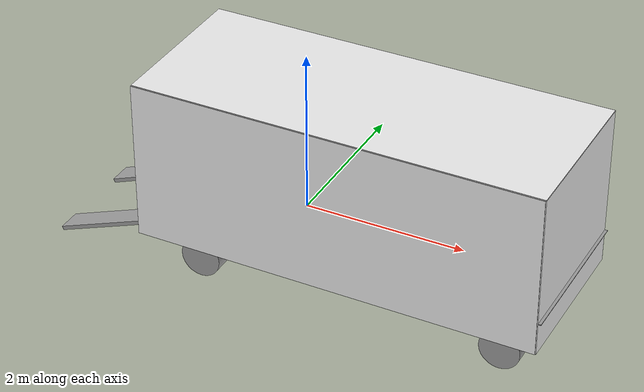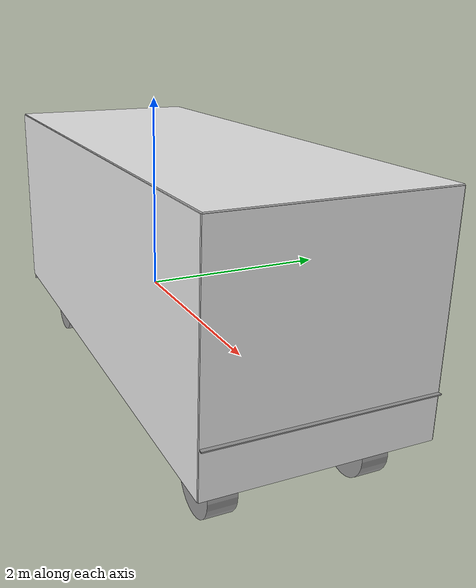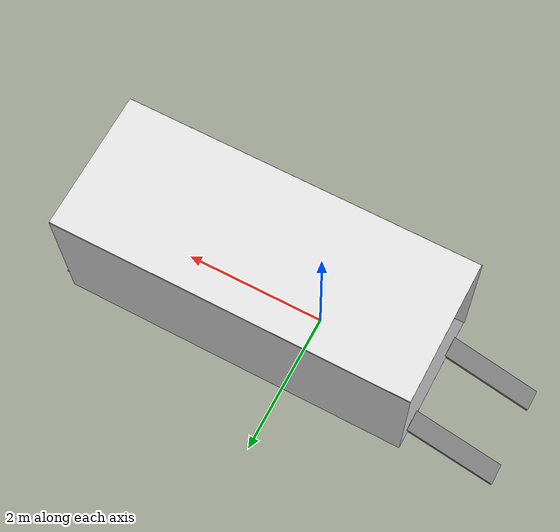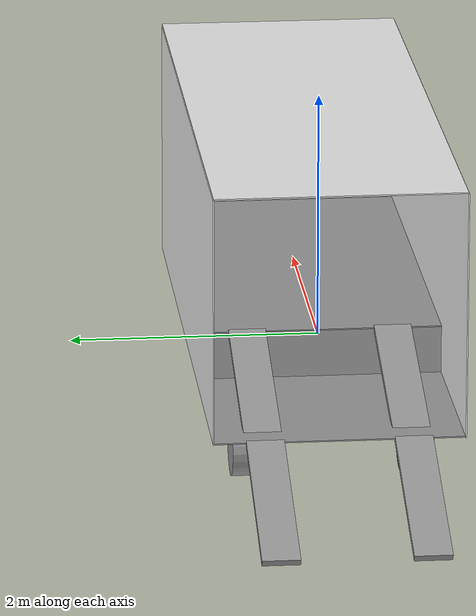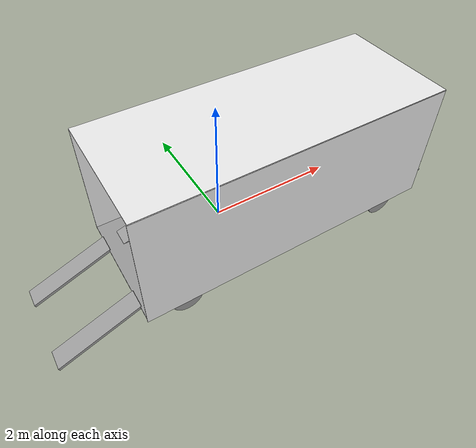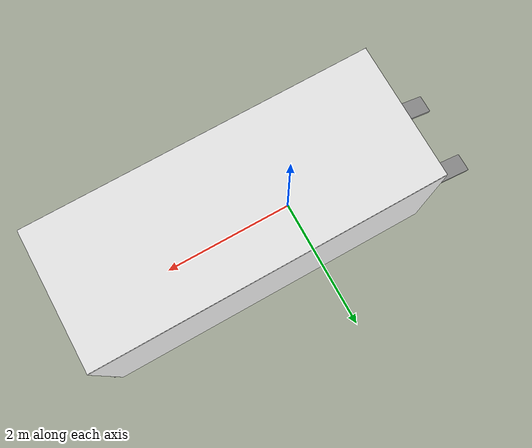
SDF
<?xml version='1.0'?>
<sdf version='1.6'>
  <model name='van'>
    <link name='link_0'>
      <inertial>
        <mass>200</mass>
        <inertia>
          <ixx>65.4077</ixx>
          <ixy>0</ixy>
          <ixz>0</ixz>
          <iyy>416.668</iyy>
          <iyz>0</iyz>
          <izz>482.073</izz>
        </inertia>
        <pose frame=''>0 0 0 0 -0 0</pose>
      </inertial>
      <pose frame=''>0.803701 0.00132 -0.310336 0 -0 0</pose>
      <gravity>1</gravity>
      <self_collide>0</self_collide>
      <kinematic>0</kinematic>
      <enable_wind>0</enable_wind>
      <visual name='visual'>
        <pose frame=''>0 0 0 0 -0 0</pose>
        <geometry>
          <box>
            <size>5 1.981 0.01</size>
          </box>
        </geometry>
        <material>
          <lighting>1</lighting>
          <script>
            <uri>file://media/materials/scripts/gazebo.material</uri>
            <name>Gazebo/Grey</name>
          </script>
          <shader type='vertex'>
            <normal_map>__default__</normal_map>
          </shader>
          <ambient>0.3 0.3 0.3 1</ambient>
          <diffuse>0.7 0.7 0.7 1</diffuse>
          <specular>0.01 0.01 0.01 1</specular>
          <emissive>0 0 0 1</emissive>
        </material>
        <transparency>0</transparency>
        <cast_shadows>1</cast_shadows>
      </visual>
      <collision name='collision'>
        <laser_retro>0</laser_retro>
        <max_contacts>10</max_contacts>
        <pose frame=''>0 0 0 0 -0 0</pose>
        <geometry>
          <box>
            <size>5 1.981 0.01</size>
          </box>
        </geometry>
        <surface>
          <friction>
            <ode>
              <mu>1</mu>
              <mu2>1</mu2>
              <fdir1>1 0 0</fdir1>
              <slip1>0</slip1>
              <slip2>0</slip2>
            </ode>
            <torsional>
              <coefficient>1</coefficient>
              <patch_radius>0</patch_radius>
              <surface_radius>0</surface_radius>
              <use_patch_radius>1</use_patch_radius>
              <ode>
                <slip>0</slip>
              </ode>
            </torsional>
          </friction>
          <bounce>
            <restitution_coefficient>0</restitution_coefficient>
            <threshold>1e+06</threshold>
          </bounce>
          <contact>
            <collide_without_contact>0</collide_without_contact>
            <collide_without_contact_bitmask>1</collide_without_contact_bitmask>
            <collide_bitmask>1</collide_bitmask>
            <ode>
              <soft_cfm>0</soft_cfm>
              <soft_erp>0.2</soft_erp>
              <kp>1e+13</kp>
              <kd>1e+13</kd>
              <max_vel>0</max_vel>
              <min_depth>0</min_depth>
            </ode>
            <bullet>
              <split_impulse>1</split_impulse>
              <split_impulse_penetration_threshold>-0.01</split_impulse_penetration_threshold>
              <soft_cfm>0</soft_cfm>
              <soft_erp>0.2</soft_erp>
              <kp>1e+13</kp>
              <kd>1e+13</kd>
            </bullet>
          </contact>
        </surface>
      </collision>
    </link>
    <link name='link_0_0'>
      <inertial>
        <mass>150</mass>
        <inertia>
          <ixx>51.0545</ixx>
          <ixy>0</ixy>
          <ixz>0</ixz>
          <iyy>2.00125</iyy>
          <iyz>0</iyz>
          <izz>49.0558</izz>
        </inertia>
        <pose frame=''>0 0 0 0 -0 0</pose>
      </inertial>
      <pose frame=''>-0.152 0.001346 -0.113301 7e-06 -0.002504 0.000226</pose>
      <gravity>1</gravity>
      <self_collide>0</self_collide>
      <kinematic>0</kinematic>
      <enable_wind>0</enable_wind>
      <visual name='visual'>
        <pose frame=''>0 0 0 0 -0 0</pose>
        <geometry>
          <box>
            <size>0.01 1.981 0.4</size>
          </box>
        </geometry>
        <material>
          <lighting>1</lighting>
          <script>
            <uri>file://media/materials/scripts/gazebo.material</uri>
            <name>Gazebo/Grey</name>
          </script>
          <shader type='vertex'>
            <normal_map>__default__</normal_map>
          </shader>
          <ambient>0.3 0.3 0.3 1</ambient>
          <diffuse>0.7 0.7 0.7 1</diffuse>
          <specular>0.01 0.01 0.01 1</specular>
          <emissive>0 0 0 1</emissive>
        </material>
        <transparency>0</transparency>
        <cast_shadows>1</cast_shadows>
      </visual>
      <collision name='collision'>
        <laser_retro>0</laser_retro>
        <max_contacts>10</max_contacts>
        <pose frame=''>0 0 0 0 -0 0</pose>
        <geometry>
          <box>
            <size>0.01 1.981 0.4</size>
          </box>
        </geometry>
        <surface>
          <friction>
            <ode>
              <mu>1</mu>
              <mu2>1</mu2>
              <fdir1>0 0 0</fdir1>
              <slip1>0</slip1>
              <slip2>0</slip2>
            </ode>
            <torsional>
              <coefficient>1</coefficient>
              <patch_radius>0</patch_radius>
              <surface_radius>0</surface_radius>
              <use_patch_radius>1</use_patch_radius>
              <ode>
                <slip>0</slip>
              </ode>
            </torsional>
          </friction>
          <bounce>
            <restitution_coefficient>0</restitution_coefficient>
            <threshold>1e+06</threshold>
          </bounce>
          <contact>
            <collide_without_contact>0</collide_without_contact>
            <collide_without_contact_bitmask>1</collide_without_contact_bitmask>
            <collide_bitmask>1</collide_bitmask>
            <ode>
              <soft_cfm>0</soft_cfm>
              <soft_erp>0.2</soft_erp>
              <kp>1e+13</kp>
              <kd>1e+13</kd>
              <max_vel>0</max_vel>
              <min_depth>0</min_depth>
            </ode>
            <bullet>
              <split_impulse>1</split_impulse>
              <split_impulse_penetration_threshold>-0.01</split_impulse_penetration_threshold>
              <soft_cfm>0</soft_cfm>
              <soft_erp>0.2</soft_erp>
              <kp>1e+13</kp>
              <kd>1e+13</kd>
            </bullet>
          </contact>
        </surface>
      </collision>
    </link>
    <link name='link_0_clone'>
      <inertial>
        <mass>1</mass>
        <inertia>
          <ixx>0.166667</ixx>
          <ixy>0</ixy>
          <ixz>0</ixz>
          <iyy>0.166667</iyy>
          <iyz>0</iyz>
          <izz>0.166667</izz>
        </inertia>
        <pose frame=''>0 0 0 0 -0 0</pose>
      </inertial>
      <pose frame=''>0.803701 0.00132 1.68966 0 -0 0</pose>
      <gravity>1</gravity>
      <self_collide>0</self_collide>
      <kinematic>0</kinematic>
      <enable_wind>0</enable_wind>
      <visual name='visual'>
        <pose frame=''>0 0 0 0 -0 0</pose>
        <geometry>
          <box>
            <size>5 1.981 0.01</size>
          </box>
        </geometry>
        <material>
          <lighting>1</lighting>
          <script>
            <uri>file://media/materials/scripts/gazebo.material</uri>
            <name>Gazebo/White</name>
          </script>
          <shader type='vertex'>
            <normal_map>__default__</normal_map>
          </shader>
          <ambient>0.3 0.3 0.3 1</ambient>
          <diffuse>0.7 0.7 0.7 1</diffuse>
          <specular>0.01 0.01 0.01 1</specular>
          <emissive>0 0 0 1</emissive>
        </material>
        <transparency>0</transparency>
        <cast_shadows>1</cast_shadows>
      </visual>
      <collision name='collision'>
        <laser_retro>0</laser_retro>
        <max_contacts>10</max_contacts>
        <pose frame=''>0 0 0 0 -0 0</pose>
        <geometry>
          <box>
            <size>5 1.981 0.01</size>
          </box>
        </geometry>
        <surface>
          <friction>
            <ode>
              <mu>1</mu>
              <mu2>1</mu2>
              <fdir1>0 0 0</fdir1>
              <slip1>0</slip1>
              <slip2>0</slip2>
            </ode>
            <torsional>
              <coefficient>1</coefficient>
              <patch_radius>0</patch_radius>
              <surface_radius>0</surface_radius>
              <use_patch_radius>1</use_patch_radius>
              <ode>
                <slip>0</slip>
              </ode>
            </torsional>
          </friction>
          <bounce>
            <restitution_coefficient>0</restitution_coefficient>
            <threshold>1e+06</threshold>
          </bounce>
          <contact>
            <collide_without_contact>0</collide_without_contact>
            <collide_without_contact_bitmask>1</collide_without_contact_bitmask>
            <collide_bitmask>1</collide_bitmask>
            <ode>
              <soft_cfm>0</soft_cfm>
              <soft_erp>0.2</soft_erp>
              <kp>1e+13</kp>
              <kd>1e+13</kd>
              <max_vel>0</max_vel>
              <min_depth>0</min_depth>
            </ode>
            <bullet>
              <split_impulse>1</split_impulse>
              <split_impulse_penetration_threshold>-0.01</split_impulse_penetration_threshold>
              <soft_cfm>0</soft_cfm>
              <soft_erp>0.2</soft_erp>
              <kp>1e+13</kp>
              <kd>1e+13</kd>
            </bullet>
          </contact>
        </surface>
      </collision>
    </link>
    <link name='link_1'>
      <inertial>
        <mass>1</mass>
        <inertia>
          <ixx>0.166667</ixx>
          <ixy>0</ixy>
          <ixz>0</ixz>
          <iyy>0.166667</iyy>
          <iyz>0</iyz>
          <izz>0.166667</izz>
        </inertia>
        <pose frame=''>0 0 0 0 -0 0</pose>
      </inertial>
      <pose frame=''>0.803701 0.80832 0.682664 0 -0 0</pose>
      <gravity>1</gravity>
      <self_collide>0</self_collide>
      <kinematic>0</kinematic>
      <enable_wind>0</enable_wind>
      <visual name='visual'>
        <pose frame=''>0 0.185 0 0 -0 0</pose>
        <geometry>
          <box>
            <size>5 0.01 2</size>
          </box>
        </geometry>
        <material>
          <lighting>1</lighting>
          <script>
            <uri>file://media/materials/scripts/gazebo.material</uri>
            <name>Gazebo/White</name>
          </script>
          <shader type='vertex'>
            <normal_map>__default__</normal_map>
          </shader>
          <ambient>0.3 0.3 0.3 1</ambient>
          <diffuse>0.7 0.7 0.7 1</diffuse>
          <specular>0.01 0.01 0.01 1</specular>
          <emissive>0 0 0 1</emissive>
        </material>
        <transparency>0</transparency>
        <cast_shadows>1</cast_shadows>
      </visual>
      <collision name='collision'>
        <laser_retro>0</laser_retro>
        <max_contacts>10</max_contacts>
        <pose frame=''>0 0.185 0 0 -0 0</pose>
        <geometry>
          <box>
            <size>5 0.01 2</size>
          </box>
        </geometry>
        <surface>
          <friction>
            <ode>
              <mu>1</mu>
              <mu2>1</mu2>
              <fdir1>0 0 0</fdir1>
              <slip1>0</slip1>
              <slip2>0</slip2>
            </ode>
            <torsional>
              <coefficient>1</coefficient>
              <patch_radius>0</patch_radius>
              <surface_radius>0</surface_radius>
              <use_patch_radius>1</use_patch_radius>
              <ode>
                <slip>0</slip>
              </ode>
            </torsional>
          </friction>
          <bounce>
            <restitution_coefficient>0</restitution_coefficient>
            <threshold>1e+06</threshold>
          </bounce>
          <contact>
            <collide_without_contact>0</collide_without_contact>
            <collide_without_contact_bitmask>1</collide_without_contact_bitmask>
            <collide_bitmask>1</collide_bitmask>
            <ode>
              <soft_cfm>0</soft_cfm>
              <soft_erp>0.2</soft_erp>
              <kp>1e+13</kp>
              <kd>1e+13</kd>
              <max_vel>0</max_vel>
              <min_depth>0</min_depth>
            </ode>
            <bullet>
              <split_impulse>1</split_impulse>
              <split_impulse_penetration_threshold>-0.01</split_impulse_penetration_threshold>
              <soft_cfm>0</soft_cfm>
              <soft_erp>0.2</soft_erp>
              <kp>1e+13</kp>
              <kd>1e+13</kd>
            </bullet>
          </contact>
        </surface>
      </collision>
    </link>
    <link name='link_1_0'>
      <inertial>
        <mass>200</mass>
        <inertia>
          <ixx>65.4077</ixx>
          <ixy>0</ixy>
          <ixz>0</ixz>
          <iyy>204.168</iyy>
          <iyz>0</iyz>
          <izz>269.573</izz>
        </inertia>
        <pose frame=''>0 0 0 0 -0 0</pose>
      </inertial>
      <pose frame=''>1.59126 0.001498 0.089757 7e-06 -0.002504 0.000226</pose>
      <gravity>1</gravity>
      <self_collide>0</self_collide>
      <kinematic>0</kinematic>
      <enable_wind>0</enable_wind>
      <visual name='visual'>
        <pose frame=''>0 0 0 0 -0 0</pose>
        <geometry>
          <box>
            <size>3.5 1.981 0.01</size>
          </box>
        </geometry>
        <material>
          <lighting>1</lighting>
          <script>
            <uri>file://media/materials/scripts/gazebo.material</uri>
            <name>Gazebo/Grey</name>
          </script>
          <shader type='vertex'>
            <normal_map>__default__</normal_map>
          </shader>
          <ambient>0.3 0.3 0.3 1</ambient>
          <diffuse>0.7 0.7 0.7 1</diffuse>
          <specular>0.01 0.01 0.01 1</specular>
          <emissive>0 0 0 1</emissive>
        </material>
        <transparency>0</transparency>
        <cast_shadows>1</cast_shadows>
      </visual>
      <collision name='collision'>
        <laser_retro>0</laser_retro>
        <max_contacts>10</max_contacts>
        <pose frame=''>0 0 0 0 -0 0</pose>
        <geometry>
          <box>
            <size>3.5 1.981 0.01</size>
          </box>
        </geometry>
        <surface>
          <friction>
            <ode>
              <mu>1</mu>
              <mu2>1</mu2>
              <fdir1>0 0 0</fdir1>
              <slip1>0</slip1>
              <slip2>0</slip2>
            </ode>
            <torsional>
              <coefficient>1</coefficient>
              <patch_radius>0</patch_radius>
              <surface_radius>0</surface_radius>
              <use_patch_radius>1</use_patch_radius>
              <ode>
                <slip>0</slip>
              </ode>
            </torsional>
          </friction>
          <bounce>
            <restitution_coefficient>0</restitution_coefficient>
            <threshold>1e+06</threshold>
          </bounce>
          <contact>
            <collide_without_contact>0</collide_without_contact>
            <collide_without_contact_bitmask>1</collide_without_contact_bitmask>
            <collide_bitmask>1</collide_bitmask>
            <ode>
              <soft_cfm>0</soft_cfm>
              <soft_erp>0.2</soft_erp>
              <kp>1e+13</kp>
              <kd>1e+13</kd>
              <max_vel>0</max_vel>
              <min_depth>0</min_depth>
            </ode>
            <bullet>
              <split_impulse>1</split_impulse>
              <split_impulse_penetration_threshold>-0.01</split_impulse_penetration_threshold>
              <soft_cfm>0</soft_cfm>
              <soft_erp>0.2</soft_erp>
              <kp>1e+13</kp>
              <kd>1e+13</kd>
            </bullet>
          </contact>
        </surface>
      </collision>
    </link>
    <link name='link_1_clone'>
      <inertial>
        <mass>1</mass>
        <inertia>
          <ixx>0.166667</ixx>
          <ixy>0</ixy>
          <ixz>0</ixz>
          <iyy>0.166667</iyy>
          <iyz>0</iyz>
          <izz>0.166667</izz>
        </inertia>
        <pose frame=''>0 0 0 0 -0 0</pose>
      </inertial>
      <pose frame=''>0.79451 -0.805933 0.682641 0 -0 0</pose>
      <gravity>1</gravity>
      <self_collide>0</self_collide>
      <kinematic>0</kinematic>
      <enable_wind>0</enable_wind>
      <visual name='visual'>
        <pose frame=''>0 -0.185 0 0 -0 0</pose>
        <geometry>
          <box>
            <size>5 0.01 2</size>
          </box>
        </geometry>
        <material>
          <lighting>1</lighting>
          <script>
            <uri>file://media/materials/scripts/gazebo.material</uri>
            <name>Gazebo/White</name>
          </script>
          <shader type='vertex'>
            <normal_map>__default__</normal_map>
          </shader>
          <ambient>0.3 0.3 0.3 1</ambient>
          <diffuse>0.7 0.7 0.7 1</diffuse>
          <specular>0.01 0.01 0.01 1</specular>
          <emissive>0 0 0 1</emissive>
        </material>
        <transparency>0</transparency>
        <cast_shadows>1</cast_shadows>
      </visual>
      <collision name='collision'>
        <laser_retro>0</laser_retro>
        <max_contacts>10</max_contacts>
        <pose frame=''>0 -0.185 0 0 -0 0</pose>
        <geometry>
          <box>
            <size>5 0.01 2</size>
          </box>
        </geometry>
        <surface>
          <friction>
            <ode>
              <mu>1</mu>
              <mu2>1</mu2>
              <fdir1>0 0 0</fdir1>
              <slip1>0</slip1>
              <slip2>0</slip2>
            </ode>
            <torsional>
              <coefficient>1</coefficient>
              <patch_radius>0</patch_radius>
              <surface_radius>0</surface_radius>
              <use_patch_radius>1</use_patch_radius>
              <ode>
                <slip>0</slip>
              </ode>
            </torsional>
          </friction>
          <bounce>
            <restitution_coefficient>0</restitution_coefficient>
            <threshold>1e+06</threshold>
          </bounce>
          <contact>
            <collide_without_contact>0</collide_without_contact>
            <collide_without_contact_bitmask>1</collide_without_contact_bitmask>
            <collide_bitmask>1</collide_bitmask>
            <ode>
              <soft_cfm>0</soft_cfm>
              <soft_erp>0.2</soft_erp>
              <kp>1e+13</kp>
              <kd>1e+13</kd>
              <max_vel>0</max_vel>
              <min_depth>0</min_depth>
            </ode>
            <bullet>
              <split_impulse>1</split_impulse>
              <split_impulse_penetration_threshold>-0.01</split_impulse_penetration_threshold>
              <soft_cfm>0</soft_cfm>
              <soft_erp>0.2</soft_erp>
              <kp>1e+13</kp>
              <kd>1e+13</kd>
            </bullet>
          </contact>
        </surface>
      </collision>
    </link>
    <link name='link_2'>
      <inertial>
        <mass>1</mass>
        <inertia>
          <ixx>0.166667</ixx>
          <ixy>0</ixy>
          <ixz>0</ixz>
          <iyy>0.166667</iyy>
          <iyz>0</iyz>
          <izz>0.166667</izz>
        </inertia>
        <pose frame=''>0 0 0 0 -0 0</pose>
      </inertial>
      <pose frame=''>3.3107 0.00132 0.682664 0 -0 0</pose>
      <gravity>1</gravity>
      <self_collide>0</self_collide>
      <kinematic>0</kinematic>
      <enable_wind>0</enable_wind>
      <visual name='visual'>
        <pose frame=''>-0.01 0 0 0 -0 0</pose>
        <geometry>
          <box>
            <size>0.01 1.981 2</size>
          </box>
        </geometry>
        <material>
          <lighting>1</lighting>
          <script>
            <uri>file://media/materials/scripts/gazebo.material</uri>
            <name>Gazebo/White</name>
          </script>
          <shader type='vertex'>
            <normal_map>__default__</normal_map>
          </shader>
          <ambient>0.3 0.3 0.3 1</ambient>
          <diffuse>0.7 0.7 0.7 1</diffuse>
          <specular>0.01 0.01 0.01 1</specular>
          <emissive>0 0 0 1</emissive>
        </material>
        <transparency>0</transparency>
        <cast_shadows>1</cast_shadows>
      </visual>
      <collision name='collision'>
        <laser_retro>0</laser_retro>
        <max_contacts>10</max_contacts>
        <pose frame=''>-0.01 0 0 0 -0 0</pose>
        <geometry>
          <box>
            <size>0.01 1.981 2</size>
          </box>
        </geometry>
        <surface>
          <friction>
            <ode>
              <mu>1</mu>
              <mu2>1</mu2>
              <fdir1>0 0 0</fdir1>
              <slip1>0</slip1>
              <slip2>0</slip2>
            </ode>
            <torsional>
              <coefficient>1</coefficient>
              <patch_radius>0</patch_radius>
              <surface_radius>0</surface_radius>
              <use_patch_radius>1</use_patch_radius>
              <ode>
                <slip>0</slip>
              </ode>
            </torsional>
          </friction>
          <bounce>
            <restitution_coefficient>0</restitution_coefficient>
            <threshold>1e+06</threshold>
          </bounce>
          <contact>
            <collide_without_contact>0</collide_without_contact>
            <collide_without_contact_bitmask>1</collide_without_contact_bitmask>
            <collide_bitmask>1</collide_bitmask>
            <ode>
              <soft_cfm>0</soft_cfm>
              <soft_erp>0.2</soft_erp>
              <kp>1e+13</kp>
              <kd>1e+13</kd>
              <max_vel>0</max_vel>
              <min_depth>0</min_depth>
            </ode>
            <bullet>
              <split_impulse>1</split_impulse>
              <split_impulse_penetration_threshold>-0.01</split_impulse_penetration_threshold>
              <soft_cfm>0</soft_cfm>
              <soft_erp>0.2</soft_erp>
              <kp>1e+13</kp>
              <kd>1e+13</kd>
            </bullet>
          </contact>
        </surface>
      </collision>
    </link>
    <link name='link_3'>
      <inertial>
        <mass>100</mass>
        <inertia>
          <ixx>0.770833</ixx>
          <ixy>0</ixy>
          <ixz>0</ixz>
          <iyy>16.3542</iyy>
          <iyz>0</iyz>
          <izz>17.0833</izz>
        </inertia>
        <pose frame=''>0 0 0 0 -0 0</pose>
      </inertial>
      <pose frame=''>-2.32652 -0.582351 -0.568988 0 -0 0</pose>
      <gravity>1</gravity>
      <self_collide>0</self_collide>
      <kinematic>0</kinematic>
      <enable_wind>0</enable_wind>
      <visual name='visual'>
        <pose frame=''>0 0 0 0 -0.37 0</pose>
        <geometry>
          <box>
            <size>1.4 0.3 0.05</size>
          </box>
        </geometry>
        <material>
          <lighting>1</lighting>
          <script>
            <uri>file://media/materials/scripts/gazebo.material</uri>
            <name>Gazebo/Grey</name>
          </script>
          <shader type='vertex'>
            <normal_map>__default__</normal_map>
          </shader>
          <ambient>0.3 0.3 0.3 1</ambient>
          <diffuse>0.7 0.7 0.7 1</diffuse>
          <specular>0.01 0.01 0.01 1</specular>
          <emissive>0 0 0 1</emissive>
        </material>
        <transparency>0</transparency>
        <cast_shadows>1</cast_shadows>
      </visual>
      <collision name='collision'>
        <laser_retro>0</laser_retro>
        <max_contacts>10</max_contacts>
        <pose frame=''>0 0 0 0 -0.37 0</pose>
        <geometry>
          <box>
            <size>1.4 0.3 0.05</size>
          </box>
        </geometry>
        <surface>
          <friction>
            <ode>
              <mu>1</mu>
              <mu2>1</mu2>
              <fdir1>0 0 0</fdir1>
              <slip1>0</slip1>
              <slip2>0</slip2>
            </ode>
            <torsional>
              <coefficient>1</coefficient>
              <patch_radius>0</patch_radius>
              <surface_radius>0</surface_radius>
              <use_patch_radius>1</use_patch_radius>
              <ode>
                <slip>0</slip>
              </ode>
            </torsional>
          </friction>
          <bounce>
            <restitution_coefficient>0</restitution_coefficient>
            <threshold>1e+06</threshold>
          </bounce>
          <contact>
            <collide_without_contact>0</collide_without_contact>
            <collide_without_contact_bitmask>1</collide_without_contact_bitmask>
            <collide_bitmask>1</collide_bitmask>
            <ode>
              <soft_cfm>0</soft_cfm>
              <soft_erp>0.2</soft_erp>
              <kp>1e+13</kp>
              <kd>1e+13</kd>
              <max_vel>0</max_vel>
              <min_depth>0</min_depth>
            </ode>
            <bullet>
              <split_impulse>1</split_impulse>
              <split_impulse_penetration_threshold>-0.01</split_impulse_penetration_threshold>
              <soft_cfm>0</soft_cfm>
              <soft_erp>0.2</soft_erp>
              <kp>1e+13</kp>
              <kd>1e+13</kd>
            </bullet>
          </contact>
        </surface>
      </collision>
    </link>
    <link name='link_3_clone'>
      <inertial>
        <mass>100</mass>
        <inertia>
          <ixx>0.770833</ixx>
          <ixy>0</ixy>
          <ixz>0</ixz>
          <iyy>16.3542</iyy>
          <iyz>0</iyz>
          <izz>17.0833</izz>
        </inertia>
        <pose frame=''>0 0 0 0 -0 0</pose>
      </inertial>
      <pose frame=''>-2.32659 0.587917 -0.568988 0 -0 0</pose>
      <gravity>1</gravity>
      <self_collide>0</self_collide>
      <kinematic>0</kinematic>
      <enable_wind>0</enable_wind>
      <visual name='visual'>
        <pose frame=''>0 0 0 0 -0.37 0</pose>
        <geometry>
          <box>
            <size>1.4 0.3 0.05</size>
          </box>
        </geometry>
        <material>
          <lighting>1</lighting>
          <script>
            <uri>file://media/materials/scripts/gazebo.material</uri>
            <name>Gazebo/Grey</name>
          </script>
          <shader type='vertex'>
            <normal_map>__default__</normal_map>
          </shader>
          <ambient>0.3 0.3 0.3 1</ambient>
          <diffuse>0.7 0.7 0.7 1</diffuse>
          <specular>0.01 0.01 0.01 1</specular>
          <emissive>0 0 0 1</emissive>
        </material>
        <transparency>0</transparency>
        <cast_shadows>1</cast_shadows>
      </visual>
      <collision name='collision'>
        <laser_retro>0</laser_retro>
        <max_contacts>10</max_contacts>
        <pose frame=''>0 0 0 0 -0.37 0</pose>
        <geometry>
          <box>
            <size>1.4 0.3 0.05</size>
          </box>
        </geometry>
        <surface>
          <friction>
            <ode>
              <mu>1</mu>
              <mu2>1</mu2>
              <fdir1>0 0 0</fdir1>
              <slip1>0</slip1>
              <slip2>0</slip2>
            </ode>
            <torsional>
              <coefficient>1</coefficient>
              <patch_radius>0</patch_radius>
              <surface_radius>0</surface_radius>
              <use_patch_radius>1</use_patch_radius>
              <ode>
                <slip>0</slip>
              </ode>
            </torsional>
          </friction>
          <bounce>
            <restitution_coefficient>0</restitution_coefficient>
            <threshold>1e+06</threshold>
          </bounce>
          <contact>
            <collide_without_contact>0</collide_without_contact>
            <collide_without_contact_bitmask>1</collide_without_contact_bitmask>
            <collide_bitmask>1</collide_bitmask>
            <ode>
              <soft_cfm>0</soft_cfm>
              <soft_erp>0.2</soft_erp>
              <kp>1e+13</kp>
              <kd>1e+13</kd>
              <max_vel>0</max_vel>
              <min_depth>0</min_depth>
            </ode>
            <bullet>
              <split_impulse>1</split_impulse>
              <split_impulse_penetration_threshold>-0.01</split_impulse_penetration_threshold>
              <soft_cfm>0</soft_cfm>
              <soft_erp>0.2</soft_erp>
              <kp>1e+13</kp>
              <kd>1e+13</kd>
            </bullet>
          </contact>
        </surface>
      </collision>
    </link>
    <link name='link_3_clone_0'>
      <inertial>
        <mass>100</mass>
        <inertia>
          <ixx>0.770833</ixx>
          <ixy>0</ixy>
          <ixz>0</ixz>
          <iyy>16.3542</iyy>
          <iyz>0</iyz>
          <izz>17.0833</izz>
        </inertia>
        <pose frame=''>0 0 0 0 -0 0</pose>
      </inertial>
      <pose frame=''>-0.798898 -0.589579 -0.126943 7e-06 -0.002504 0.000226</pose>
      <gravity>1</gravity>
      <self_collide>0</self_collide>
      <kinematic>0</kinematic>
      <enable_wind>0</enable_wind>
      <visual name='visual'>
        <pose frame=''>0 0 0 0 -0.3 0</pose>
        <geometry>
          <box>
            <size>1.4 0.3 0.05</size>
          </box>
        </geometry>
        <material>
          <lighting>1</lighting>
          <script>
            <uri>file://media/materials/scripts/gazebo.material</uri>
            <name>Gazebo/Grey</name>
          </script>
          <shader type='vertex'>
            <normal_map>__default__</normal_map>
          </shader>
          <ambient>0.3 0.3 0.3 1</ambient>
          <diffuse>0.7 0.7 0.7 1</diffuse>
          <specular>0.01 0.01 0.01 1</specular>
          <emissive>0 0 0 1</emissive>
        </material>
        <transparency>0</transparency>
        <cast_shadows>1</cast_shadows>
      </visual>
      <collision name='collision'>
        <laser_retro>0</laser_retro>
        <max_contacts>10</max_contacts>
        <pose frame=''>0 0 0 0 -0.3 0</pose>
        <geometry>
          <box>
            <size>1.4 0.3 0.05</size>
          </box>
        </geometry>
        <surface>
          <friction>
            <ode>
              <mu>1</mu>
              <mu2>1</mu2>
              <fdir1>0 0 0</fdir1>
              <slip1>0</slip1>
              <slip2>0</slip2>
            </ode>
            <torsional>
              <coefficient>1</coefficient>
              <patch_radius>0</patch_radius>
              <surface_radius>0</surface_radius>
              <use_patch_radius>1</use_patch_radius>
              <ode>
                <slip>0</slip>
              </ode>
            </torsional>
          </friction>
          <bounce>
            <restitution_coefficient>0</restitution_coefficient>
            <threshold>1e+06</threshold>
          </bounce>
          <contact>
            <collide_without_contact>0</collide_without_contact>
            <collide_without_contact_bitmask>1</collide_without_contact_bitmask>
            <collide_bitmask>1</collide_bitmask>
            <ode>
              <soft_cfm>0</soft_cfm>
              <soft_erp>0.2</soft_erp>
              <kp>1e+13</kp>
              <kd>1e+13</kd>
              <max_vel>0</max_vel>
              <min_depth>0</min_depth>
            </ode>
            <bullet>
              <split_impulse>1</split_impulse>
              <split_impulse_penetration_threshold>-0.01</split_impulse_penetration_threshold>
              <soft_cfm>0</soft_cfm>
              <soft_erp>0.2</soft_erp>
              <kp>1e+13</kp>
              <kd>1e+13</kd>
            </bullet>
          </contact>
        </surface>
      </collision>
    </link>
    <link name='link_3_clone_clone'>
      <inertial>
        <mass>100</mass>
        <inertia>
          <ixx>0.770833</ixx>
          <ixy>0</ixy>
          <ixz>0</ixz>
          <iyy>16.3542</iyy>
          <iyz>0</iyz>
          <izz>17.0833</izz>
        </inertia>
        <pose frame=''>0 0 0 0 -0 0</pose>
      </inertial>
      <pose frame=''>-0.804143 0.588491 -0.126947 7e-06 -0.002504 0.000226</pose>
      <gravity>1</gravity>
      <self_collide>0</self_collide>
      <kinematic>0</kinematic>
      <enable_wind>0</enable_wind>
      <visual name='visual'>
        <pose frame=''>0 0 0 0 -0.3 0</pose>
        <geometry>
          <box>
            <size>1.4 0.3 0.05</size>
          </box>
        </geometry>
        <material>
          <lighting>1</lighting>
          <script>
            <uri>file://media/materials/scripts/gazebo.material</uri>
            <name>Gazebo/Grey</name>
          </script>
          <shader type='vertex'>
            <normal_map>__default__</normal_map>
          </shader>
          <ambient>0.3 0.3 0.3 1</ambient>
          <diffuse>0.7 0.7 0.7 1</diffuse>
          <specular>0.01 0.01 0.01 1</specular>
          <emissive>0 0 0 1</emissive>
        </material>
        <transparency>0</transparency>
        <cast_shadows>1</cast_shadows>
      </visual>
      <collision name='collision'>
        <laser_retro>0</laser_retro>
        <max_contacts>10</max_contacts>
        <pose frame=''>0 0 0 0 -0.3 0</pose>
        <geometry>
          <box>
            <size>1.4 0.3 0.05</size>
          </box>
        </geometry>
        <surface>
          <friction>
            <ode>
              <mu>1</mu>
              <mu2>1</mu2>
              <fdir1>0 0 0</fdir1>
              <slip1>0</slip1>
              <slip2>0</slip2>
            </ode>
            <torsional>
              <coefficient>1</coefficient>
              <patch_radius>0</patch_radius>
              <surface_radius>0</surface_radius>
              <use_patch_radius>1</use_patch_radius>
              <ode>
                <slip>0</slip>
              </ode>
            </torsional>
          </friction>
          <bounce>
            <restitution_coefficient>0</restitution_coefficient>
            <threshold>1e+06</threshold>
          </bounce>
          <contact>
            <collide_without_contact>0</collide_without_contact>
            <collide_without_contact_bitmask>1</collide_without_contact_bitmask>
            <collide_bitmask>1</collide_bitmask>
            <ode>
              <soft_cfm>0</soft_cfm>
              <soft_erp>0.2</soft_erp>
              <kp>1e+13</kp>
              <kd>1e+13</kd>
              <max_vel>0</max_vel>
              <min_depth>0</min_depth>
            </ode>
            <bullet>
              <split_impulse>1</split_impulse>
              <split_impulse_penetration_threshold>-0.01</split_impulse_penetration_threshold>
              <soft_cfm>0</soft_cfm>
              <soft_erp>0.2</soft_erp>
              <kp>1e+13</kp>
              <kd>1e+13</kd>
            </bullet>
          </contact>
        </surface>
      </collision>
    </link>
    <link name='link_4'>
      <inertial>
        <mass>1000</mass>
        <inertia>
          <ixx>20.8333</ixx>
          <ixy>0</ixy>
          <ixz>0</ixz>
          <iyy>20.8333</iyy>
          <iyz>0</iyz>
          <izz>31.25</izz>
        </inertia>
        <pose frame=''>0 0 0 0 -0 0</pose>
      </inertial>
      <pose frame=''>-0.996299 0.676319 -0.567336 1.5708 -0 0</pose>
      <gravity>1</gravity>
      <self_collide>0</self_collide>
      <kinematic>0</kinematic>
      <enable_wind>0</enable_wind>
      <visual name='visual'>
        <pose frame=''>0 0 0 0 -0 0</pose>
        <geometry>
          <cylinder>
            <radius>0.25</radius>
            <length>0.25</length>
          </cylinder>
        </geometry>
        <material>
          <lighting>1</lighting>
          <script>
            <uri>file://media/materials/scripts/gazebo.material</uri>
            <name>Gazebo/Grey</name>
          </script>
          <shader type='vertex'>
            <normal_map>__default__</normal_map>
          </shader>
          <ambient>0.3 0.3 0.3 1</ambient>
          <diffuse>0.7 0.7 0.7 1</diffuse>
          <specular>0.01 0.01 0.01 1</specular>
          <emissive>0 0 0 1</emissive>
        </material>
        <transparency>0</transparency>
        <cast_shadows>1</cast_shadows>
      </visual>
      <collision name='collision'>
        <laser_retro>0</laser_retro>
        <max_contacts>10</max_contacts>
        <pose frame=''>0 0 0 0 -0 0</pose>
        <geometry>
          <cylinder>
            <radius>0.25</radius>
            <length>0.25</length>
          </cylinder>
        </geometry>
        <surface>
          <friction>
            <ode>
              <mu>1</mu>
              <mu2>1</mu2>
              <fdir1>0 0 0</fdir1>
              <slip1>0</slip1>
              <slip2>0</slip2>
            </ode>
            <torsional>
              <coefficient>1</coefficient>
              <patch_radius>0</patch_radius>
              <surface_radius>0</surface_radius>
              <use_patch_radius>1</use_patch_radius>
              <ode>
                <slip>0</slip>
              </ode>
            </torsional>
          </friction>
          <bounce>
            <restitution_coefficient>0</restitution_coefficient>
            <threshold>1e+06</threshold>
          </bounce>
          <contact>
            <collide_without_contact>0</collide_without_contact>
            <collide_without_contact_bitmask>1</collide_without_contact_bitmask>
            <collide_bitmask>1</collide_bitmask>
            <ode>
              <soft_cfm>0</soft_cfm>
              <soft_erp>0.2</soft_erp>
              <kp>1e+13</kp>
              <kd>1e+13</kd>
              <max_vel>0</max_vel>
              <min_depth>0</min_depth>
            </ode>
            <bullet>
              <split_impulse>1</split_impulse>
              <split_impulse_penetration_threshold>-0.01</split_impulse_penetration_threshold>
              <soft_cfm>0</soft_cfm>
              <soft_erp>0.2</soft_erp>
              <kp>1e+13</kp>
              <kd>1e+13</kd>
            </bullet>
          </contact>
        </surface>
      </collision>
    </link>
    <link name='link_4_clone'>
      <inertial>
        <mass>1000</mass>
        <inertia>
          <ixx>20.8333</ixx>
          <ixy>0</ixy>
          <ixz>0</ixz>
          <iyy>20.8333</iyy>
          <iyz>0</iyz>
          <izz>31.25</izz>
        </inertia>
        <pose frame=''>0 0 0 0 -0 0</pose>
      </inertial>
      <pose frame=''>2.8037 0.676319 -0.567336 1.5708 -0 0</pose>
      <gravity>1</gravity>
      <self_collide>0</self_collide>
      <kinematic>0</kinematic>
      <enable_wind>0</enable_wind>
      <visual name='visual'>
        <pose frame=''>0 0 0 0 -0 0</pose>
        <geometry>
          <cylinder>
            <radius>0.25</radius>
            <length>0.25</length>
          </cylinder>
        </geometry>
        <material>
          <lighting>1</lighting>
          <script>
            <uri>file://media/materials/scripts/gazebo.material</uri>
            <name>Gazebo/Grey</name>
          </script>
          <shader type='vertex'>
            <normal_map>__default__</normal_map>
          </shader>
          <ambient>0.3 0.3 0.3 1</ambient>
          <diffuse>0.7 0.7 0.7 1</diffuse>
          <specular>0.01 0.01 0.01 1</specular>
          <emissive>0 0 0 1</emissive>
        </material>
        <transparency>0</transparency>
        <cast_shadows>1</cast_shadows>
      </visual>
      <collision name='collision'>
        <laser_retro>0</laser_retro>
        <max_contacts>10</max_contacts>
        <pose frame=''>0 0 0 0 -0 0</pose>
        <geometry>
          <cylinder>
            <radius>0.25</radius>
            <length>0.25</length>
          </cylinder>
        </geometry>
        <surface>
          <friction>
            <ode>
              <mu>1</mu>
              <mu2>1</mu2>
              <fdir1>0 0 0</fdir1>
              <slip1>0</slip1>
              <slip2>0</slip2>
            </ode>
            <torsional>
              <coefficient>1</coefficient>
              <patch_radius>0</patch_radius>
              <surface_radius>0</surface_radius>
              <use_patch_radius>1</use_patch_radius>
              <ode>
                <slip>0</slip>
              </ode>
            </torsional>
          </friction>
          <bounce>
            <restitution_coefficient>0</restitution_coefficient>
            <threshold>1e+06</threshold>
          </bounce>
          <contact>
            <collide_without_contact>0</collide_without_contact>
            <collide_without_contact_bitmask>1</collide_without_contact_bitmask>
            <collide_bitmask>1</collide_bitmask>
            <ode>
              <soft_cfm>0</soft_cfm>
              <soft_erp>0.2</soft_erp>
              <kp>1e+13</kp>
              <kd>1e+13</kd>
              <max_vel>0</max_vel>
              <min_depth>0</min_depth>
            </ode>
            <bullet>
              <split_impulse>1</split_impulse>
              <split_impulse_penetration_threshold>-0.01</split_impulse_penetration_threshold>
              <soft_cfm>0</soft_cfm>
              <soft_erp>0.2</soft_erp>
              <kp>1e+13</kp>
              <kd>1e+13</kd>
            </bullet>
          </contact>
        </surface>
      </collision>
    </link>
    <link name='link_4_clone_0'>
      <inertial>
        <mass>1000</mass>
        <inertia>
          <ixx>20.8333</ixx>
          <ixy>0</ixy>
          <ixz>0</ixz>
          <iyy>20.8333</iyy>
          <iyz>0</iyz>
          <izz>31.25</izz>
        </inertia>
        <pose frame=''>0 0 0 0 -0 0</pose>
      </inertial>
      <pose frame=''>-0.996299 -0.673679 -0.567336 1.5708 -0 0</pose>
      <gravity>1</gravity>
      <self_collide>0</self_collide>
      <kinematic>0</kinematic>
      <enable_wind>0</enable_wind>
      <visual name='visual'>
        <pose frame=''>0 0 0 0 -0 0</pose>
        <geometry>
          <cylinder>
            <radius>0.25</radius>
            <length>0.25</length>
          </cylinder>
        </geometry>
        <material>
          <lighting>1</lighting>
          <script>
            <uri>file://media/materials/scripts/gazebo.material</uri>
            <name>Gazebo/Grey</name>
          </script>
          <shader type='vertex'>
            <normal_map>__default__</normal_map>
          </shader>
          <ambient>0.3 0.3 0.3 1</ambient>
          <diffuse>0.7 0.7 0.7 1</diffuse>
          <specular>0.01 0.01 0.01 1</specular>
          <emissive>0 0 0 1</emissive>
        </material>
        <transparency>0</transparency>
        <cast_shadows>1</cast_shadows>
      </visual>
      <collision name='collision'>
        <laser_retro>0</laser_retro>
        <max_contacts>10</max_contacts>
        <pose frame=''>0 0 0 0 -0 0</pose>
        <geometry>
          <cylinder>
            <radius>0.25</radius>
            <length>0.25</length>
          </cylinder>
        </geometry>
        <surface>
          <friction>
            <ode>
              <mu>1</mu>
              <mu2>1</mu2>
              <fdir1>0 0 0</fdir1>
              <slip1>0</slip1>
              <slip2>0</slip2>
            </ode>
            <torsional>
              <coefficient>1</coefficient>
              <patch_radius>0</patch_radius>
              <surface_radius>0</surface_radius>
              <use_patch_radius>1</use_patch_radius>
              <ode>
                <slip>0</slip>
              </ode>
            </torsional>
          </friction>
          <bounce>
            <restitution_coefficient>0</restitution_coefficient>
            <threshold>1e+06</threshold>
          </bounce>
          <contact>
            <collide_without_contact>0</collide_without_contact>
            <collide_without_contact_bitmask>1</collide_without_contact_bitmask>
            <collide_bitmask>1</collide_bitmask>
            <ode>
              <soft_cfm>0</soft_cfm>
              <soft_erp>0.2</soft_erp>
              <kp>1e+13</kp>
              <kd>1e+13</kd>
              <max_vel>0</max_vel>
              <min_depth>0</min_depth>
            </ode>
            <bullet>
              <split_impulse>1</split_impulse>
              <split_impulse_penetration_threshold>-0.01</split_impulse_penetration_threshold>
              <soft_cfm>0</soft_cfm>
              <soft_erp>0.2</soft_erp>
              <kp>1e+13</kp>
              <kd>1e+13</kd>
            </bullet>
          </contact>
        </surface>
      </collision>
    </link>
    <link name='link_4_clone_1'>
      <inertial>
        <mass>1000</mass>
        <inertia>
          <ixx>20.8333</ixx>
          <ixy>0</ixy>
          <ixz>0</ixz>
          <iyy>20.8333</iyy>
          <iyz>0</iyz>
          <izz>31.25</izz>
        </inertia>
        <pose frame=''>0 0 0 0 -0 0</pose>
      </inertial>
      <pose frame=''>2.8037 -0.673679 -0.567336 1.5708 -0 0</pose>
      <gravity>1</gravity>
      <self_collide>0</self_collide>
      <kinematic>0</kinematic>
      <enable_wind>0</enable_wind>
      <visual name='visual'>
        <pose frame=''>0 0 0 0 -0 0</pose>
        <geometry>
          <cylinder>
            <radius>0.25</radius>
            <length>0.25</length>
          </cylinder>
        </geometry>
        <material>
          <lighting>1</lighting>
          <script>
            <uri>file://media/materials/scripts/gazebo.material</uri>
            <name>Gazebo/Grey</name>
          </script>
          <shader type='vertex'>
            <normal_map>__default__</normal_map>
          </shader>
          <ambient>0.3 0.3 0.3 1</ambient>
          <diffuse>0.7 0.7 0.7 1</diffuse>
          <specular>0.01 0.01 0.01 1</specular>
          <emissive>0 0 0 1</emissive>
        </material>
        <transparency>0</transparency>
        <cast_shadows>1</cast_shadows>
      </visual>
      <collision name='collision'>
        <laser_retro>0</laser_retro>
        <max_contacts>10</max_contacts>
        <pose frame=''>0 0 0 0 -0 0</pose>
        <geometry>
          <cylinder>
            <radius>0.25</radius>
            <length>0.25</length>
          </cylinder>
        </geometry>
        <surface>
          <friction>
            <ode>
              <mu>1</mu>
              <mu2>1</mu2>
              <fdir1>0 0 0</fdir1>
              <slip1>0</slip1>
              <slip2>0</slip2>
            </ode>
            <torsional>
              <coefficient>1</coefficient>
              <patch_radius>0</patch_radius>
              <surface_radius>0</surface_radius>
              <use_patch_radius>1</use_patch_radius>
              <ode>
                <slip>0</slip>
              </ode>
            </torsional>
          </friction>
          <bounce>
            <restitution_coefficient>0</restitution_coefficient>
            <threshold>1e+06</threshold>
          </bounce>
          <contact>
            <collide_without_contact>0</collide_without_contact>
            <collide_without_contact_bitmask>1</collide_without_contact_bitmask>
            <collide_bitmask>1</collide_bitmask>
            <ode>
              <soft_cfm>0</soft_cfm>
              <soft_erp>0.2</soft_erp>
              <kp>1e+13</kp>
              <kd>1e+13</kd>
              <max_vel>0</max_vel>
              <min_depth>0</min_depth>
            </ode>
            <bullet>
              <split_impulse>1</split_impulse>
              <split_impulse_penetration_threshold>-0.01</split_impulse_penetration_threshold>
              <soft_cfm>0</soft_cfm>
              <soft_erp>0.2</soft_erp>
              <kp>1e+13</kp>
              <kd>1e+13</kd>
            </bullet>
          </contact>
        </surface>
      </collision>
    </link>
    <joint name='link_0_JOINT_0' type='fixed'>
      <parent>link_0</parent>
      <child>link_1</child>
      <pose frame=''>0 0 0 0 -0 0</pose>
      <physics>
        <ode>
          <limit>
            <cfm>0</cfm>
            <erp>0.2</erp>
          </limit>
          <suspension>
            <cfm>0</cfm>
            <erp>0.2</erp>
          </suspension>
        </ode>
      </physics>
    </joint>
    <joint name='link_0_JOINT_10' type='fixed'>
      <parent>link_0</parent>
      <child>link_4_clone_1</child>
      <pose frame=''>0 0 0 0 -0 0</pose>
      <physics>
        <ode>
          <limit>
            <cfm>0</cfm>
            <erp>0.2</erp>
          </limit>
          <suspension>
            <cfm>0</cfm>
            <erp>0.2</erp>
          </suspension>
        </ode>
      </physics>
    </joint>
    <joint name='link_0_JOINT_1_0' type='fixed'>
      <parent>link_0</parent>
      <child>link_0_0</child>
      <pose frame=''>0 0 0 0 -0 0</pose>
      <physics>
        <ode>
          <limit>
            <cfm>0</cfm>
            <erp>0.2</erp>
          </limit>
          <suspension>
            <cfm>0</cfm>
            <erp>0.2</erp>
          </suspension>
        </ode>
      </physics>
    </joint>
    <joint name='link_0_JOINT_1' type='fixed'>
      <parent>link_0</parent>
      <child>link_1_clone</child>
      <pose frame=''>0 0 0 0 -0 0</pose>
      <physics>
        <ode>
          <limit>
            <cfm>0</cfm>
            <erp>0.2</erp>
          </limit>
          <suspension>
            <cfm>0</cfm>
            <erp>0.2</erp>
          </suspension>
        </ode>
      </physics>
    </joint>
    <joint name='link_0_JOINT_2' type='fixed'>
      <parent>link_0</parent>
      <child>link_2</child>
      <pose frame=''>0 0 0 0 -0 0</pose>
      <physics>
        <ode>
          <limit>
            <cfm>0</cfm>
            <erp>0.2</erp>
          </limit>
          <suspension>
            <cfm>0</cfm>
            <erp>0.2</erp>
          </suspension>
        </ode>
      </physics>
    </joint>
    <joint name='link_0_JOINT_3_0' type='fixed'>
      <parent>link_0</parent>
      <child>link_1_0</child>
      <pose frame=''>0 0 0 0 -0 0</pose>
      <physics>
        <ode>
          <limit>
            <cfm>0</cfm>
            <erp>0.2</erp>
          </limit>
          <suspension>
            <cfm>0</cfm>
            <erp>0.2</erp>
          </suspension>
        </ode>
      </physics>
    </joint>
    <joint name='link_0_JOINT_3' type='fixed'>
      <parent>link_0</parent>
      <child>link_0_clone</child>
      <pose frame=''>0 0 0 0 -0 0</pose>
      <physics>
        <ode>
          <limit>
            <cfm>0</cfm>
            <erp>0.2</erp>
          </limit>
          <suspension>
            <cfm>0</cfm>
            <erp>0.2</erp>
          </suspension>
        </ode>
      </physics>
    </joint>
    <joint name='link_0_JOINT_5' type='fixed'>
      <parent>link_0</parent>
      <child>link_3_clone</child>
      <pose frame=''>0 0 0 0 -0 0</pose>
      <physics>
        <ode>
          <limit>
            <cfm>0</cfm>
            <erp>0.2</erp>
          </limit>
          <suspension>
            <cfm>0</cfm>
            <erp>0.2</erp>
          </suspension>
        </ode>
      </physics>
    </joint>
    <joint name='link_0_JOINT_6' type='fixed'>
      <parent>link_0</parent>
      <child>link_3</child>
      <pose frame=''>0 0 0 0 -0 0</pose>
      <physics>
        <ode>
          <limit>
            <cfm>0</cfm>
            <erp>0.2</erp>
          </limit>
          <suspension>
            <cfm>0</cfm>
            <erp>0.2</erp>
          </suspension>
        </ode>
      </physics>
    </joint>
    <joint name='link_0_JOINT_7' type='fixed'>
      <parent>link_0</parent>
      <child>link_4</child>
      <pose frame=''>0 0 0 0 -0 0</pose>
      <physics>
        <ode>
          <limit>
            <cfm>0</cfm>
            <erp>0.2</erp>
          </limit>
          <suspension>
            <cfm>0</cfm>
            <erp>0.2</erp>
          </suspension>
        </ode>
      </physics>
    </joint>
    <joint name='link_0_JOINT_8' type='fixed'>
      <parent>link_0</parent>
      <child>link_4_clone_0</child>
      <pose frame=''>0 0 0 0 -0 0</pose>
      <physics>
        <ode>
          <limit>
            <cfm>0</cfm>
            <erp>0.2</erp>
          </limit>
          <suspension>
            <cfm>0</cfm>
            <erp>0.2</erp>
          </suspension>
        </ode>
      </physics>
    </joint>
    <joint name='link_0_JOINT_9' type='fixed'>
      <parent>link_0</parent>
      <child>link_4_clone</child>
      <pose frame=''>0 0 0 0 -0 0</pose>
      <physics>
        <ode>
          <limit>
            <cfm>0</cfm>
            <erp>0.2</erp>
          </limit>
          <suspension>
            <cfm>0</cfm>
            <erp>0.2</erp>
          </suspension>
        </ode>
      </physics>
    </joint>
    <joint name='link_1_0_JOINT_5' type='fixed'>
      <parent>link_1_0</parent>
      <child>link_3_clone_clone</child>
      <pose frame=''>0 0 0 0 -0 0</pose>
      <physics>
        <ode>
          <limit>
            <cfm>0</cfm>
            <erp>0.2</erp>
          </limit>
          <suspension>
            <cfm>0</cfm>
            <erp>0.2</erp>
          </suspension>
        </ode>
      </physics>
    </joint>
    <joint name='link_1_0_JOINT_6' type='fixed'>
      <parent>link_1_0</parent>
      <child>link_3_clone_0</child>
      <pose frame=''>0 0 0 0 -0 0</pose>
      <physics>
        <ode>
          <limit>
            <cfm>0</cfm>
            <erp>0.2</erp>
          </limit>
          <suspension>
            <cfm>0</cfm>
            <erp>0.2</erp>
          </suspension>
        </ode>
      </physics>
    </joint>
    <static>0</static>
    <allow_auto_disable>1</allow_auto_disable>
  </model>
</sdf>
